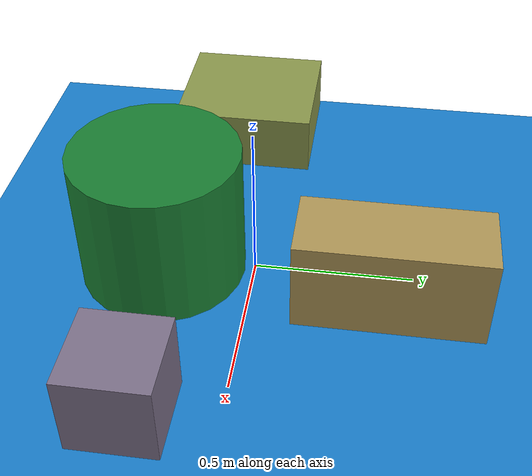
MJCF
<mujoco>
   <asset>
<texture type="skybox" builtin="gradient" rgb1="0.3 0.6 1.0" rgb2="0.7 0.1 0.7" width="256" height="256"/>
<texture name="checker_0" builtin="checker" type="2d" rgb1="0.3 0.5 0.1" rgb2="0.8 0.7 0.5" width="200" height="200"/>
<texture name="flat_1" builtin="flat" rgb1="0.1 0.5 0.2" rgb2="0.1 0.5 0.2"  width="200" height="200"/>
<texture name="gradient_2" builtin="gradient" rgb1="0.2 0.3 0.1" rgb2="0.8 0.6 1.0" width="200" height="200"/>
<texture name="gradient_3" builtin="gradient" rgb1="0.4 0.8 0.5" rgb2="1.0 0.4 0.2" width="200" height="200"/><material name="checker_0_mat" reflectance="0" texrepeat="6 6" texture="checker_0" texuniform="false" />
<material name="flat_1_mat" reflectance="0" texture="flat_1" texuniform="true"/>
<material name="gradient_2_mat" reflectance="0" texture="gradient_2" texuniform="true"/>
<material name="gradient_3_mat" reflectance="0" texture="gradient_3" texuniform="true"/>
   </asset>

   <worldbody>
      <light diffuse=".9 .9 .9" pos="0 0 3" dir="0 0 -1"/>
     <geom type="plane" size="1 1 0.1" rgba="0.1 0.5 0.8 1"/>
<geom type="box" pos="-0.75 -0.13 0.1" size="0.22 0.24 0.1" material="checker_0_mat" />
<geom type="cylinder" pos="0.03 -0.29 0.22" size="0.26 0.22 0.22" material="flat_1_mat" />
<geom type="box" pos="0.63 -0.26 0.13" size="0.13 0.13 0.13" material="gradient_2_mat" />
<geom type="box" pos="0.12 0.43 0.15" size="0.12 0.29 0.15" material="gradient_3_mat" /><camera euler="60 0 180" fovy="60" name="camera_a" pos="0 -1.5 1"></camera>   </worldbody>
</mujoco>
